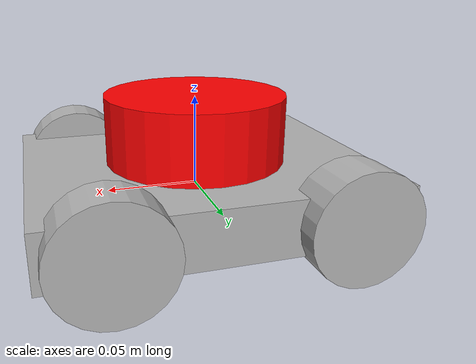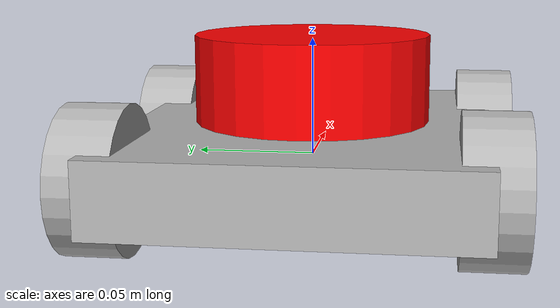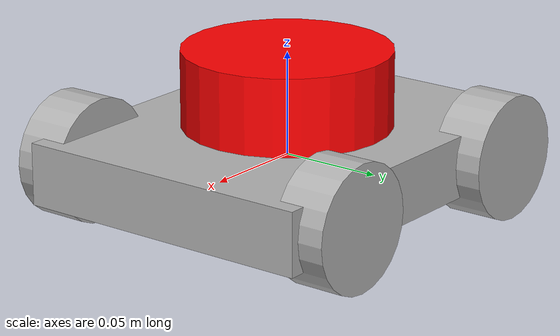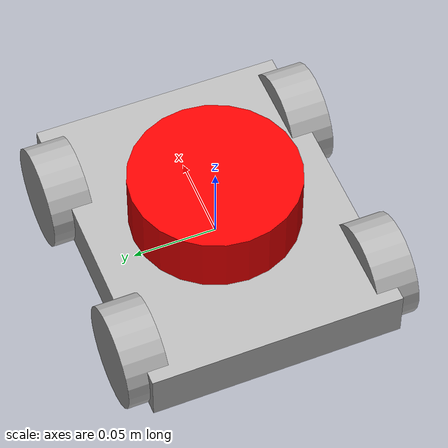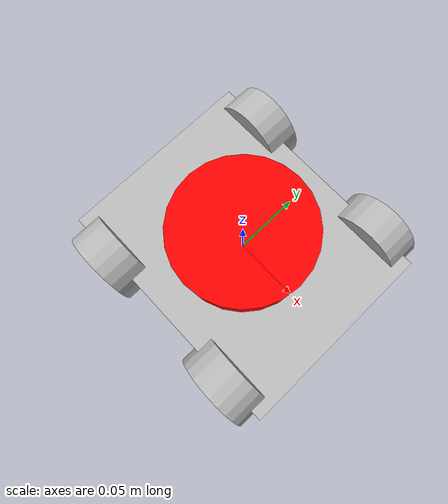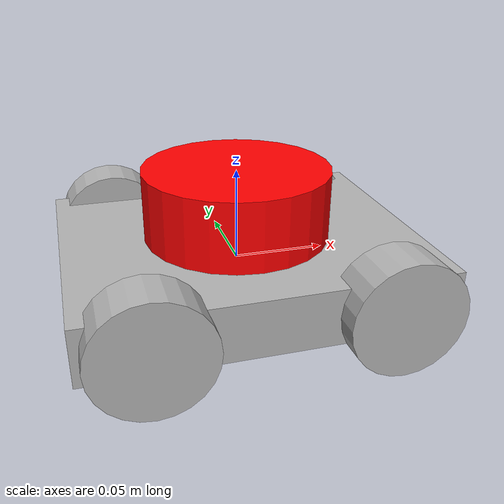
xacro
<?xml version="1.0"?>
<robot xmlns:xacro="http://www.ros.org/wiki/xacro"  name="robot">

<xacro:include filename="materials.xacro" />
<xacro:include filename="inertial_macros.xacro" />
<xacro:include filename="lidar.xacro" />

<joint name="odom" type="fixed">
  <parent link="odom"/>
  <child link="base_link"/>
  <origin xyz="0 0 0" rpy="0 0 0"/>
</joint>

<link name="odom"/>

<link name="base_link">
</link>

<joint name="chassis_joint" type="fixed">
    <parent link="base_link"/>
    <child link="chassis"/>
    <origin xyz="0 0 0"/>
</joint>

<link name="chassis">

    <visual>
        <origin xyz="0.0 0 0.0" rpy="0 0 0"/>
        <geometry>
            <box size="0.188 0.15 0.03"/>
        </geometry>
        <material name="silver"/>
    </visual>

    <collision>
        <origin xyz="0.0 0 0.0" rpy="0 0 0"/>
        <geometry>
            <box size="0.188 0.15 0.03"/>
        </geometry>
        <material name="silver"/>
    </collision>

    <xacro:inertial_box mass="0.5" x="0.3" y="0.3" z="0.15">
        <origin xyz="0.15 0 0.075" rpy="0 0 0"/>
    </xacro:inertial_box>

</link>

<joint name="left_back_wheel_joint" type="continuous">
    <parent link="base_link"/>
    <child link="left_back_wheel"/>
    <origin xyz="-0.06 0.075 0" rpy="-${pi/2} 0 0"/>
    <axis xyz="0 0 1"/>
</joint>

<link name="left_back_wheel">
    <visual>
        <geometry>
            <cylinder length="0.025" radius="0.03" />
        </geometry>
        <material name="silver"/>
    </visual>

    <collision>
        <geometry>
            <cylinder length="0.025" radius="0.03" />
        </geometry>
        <material name="silver"/>
    </collision>

</link>

<joint name="left_front_wheel_joint" type="continuous">
    <parent link="base_link"/>
    <child link="left_front_wheel"/>
    <origin xyz="0.06 0.075 0" rpy="-${pi/2} 0 0"/>
    <axis xyz="0 0 1"/>
</joint>

<link name="left_front_wheel">
    <visual>
        <geometry>
            <cylinder length="0.025" radius="0.03" />
        </geometry>
        <material name="silver"/>
    </visual>

    <collision>
        <geometry>
            <cylinder length="0.025" radius="0.03" />
        </geometry>
        <material name="silver"/>
    </collision>

</link>

<joint name="right_front_wheel_joint" type="continuous">
    <parent link="base_link"/>
    <child link="right_front_wheel"/>
    <origin xyz="0.06 -0.075 0" rpy="${pi/2} 0 0"/>
    <axis xyz="0 0 1"/>
</joint>

<link name="right_front_wheel">
    <visual>
        <geometry>
            <cylinder length="0.025" radius="0.03" />
        </geometry>
        <material name="silver"/>
    </visual>

    <collision>
        <geometry>
            <cylinder length="0.025" radius="0.03" />
        </geometry>
        <material name="silver"/>
    </collision>

</link>

<joint name="right_back_wheel_joint" type="continuous">
    <parent link="base_link"/>
    <child link="right_back_wheel"/>
    <origin xyz="-0.06 -0.075 0" rpy="${pi/2} 0 0"/>
    <axis xyz="0 0 1"/>
</joint>

<link name="right_back_wheel">
    <visual>
        <geometry>
            <cylinder length="0.025" radius="0.03" />
        </geometry>
        <material name="silver"/>
    </visual>

    <collision>
        <geometry>
            <cylinder length="0.025" radius="0.03" />
        </geometry>
        <material name="silver"/>
    </collision>

</link>

</robot>

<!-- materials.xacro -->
<robot xmlns:xacro="http://www.ros.org/wiki/xacro">

  <material name="silver">
    <color rgba="0.700 0.700 0.700 1.000"/>
  </material>

  <material name="red">
    <color rgba="1 0 0 1"/>
  </material>

</robot>

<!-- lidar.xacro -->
<robot xmlns:xacro="http://www.ros.org/wiki/xacro" >

    <joint name="laser_joint" type="fixed">
        <parent link="chassis"/>
        <child link="laser_frame"/>
        <origin xyz="0 0 0.032" rpy="0 0 0"/>
    </joint>

    <link name="laser_frame">
        <visual>
            <geometry>
                <cylinder radius="0.05" length="0.04"/>
            </geometry>
            <material name="red"/>
        </visual>
        <collision>
            <geometry>
                <cylinder radius="0.05" length="0.04"/>
            </geometry>
        </collision>
        <xacro:inertial_cylinder mass="0.1" length="0.04" radius="0.04">
            <origin xyz="0 0 0" rpy="0 0 0"/>
        </xacro:inertial_cylinder>
    </link>
</robot>
